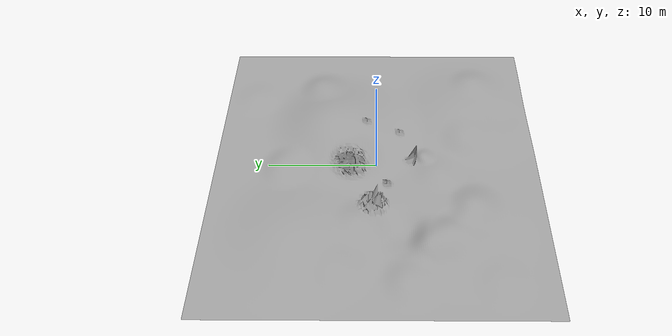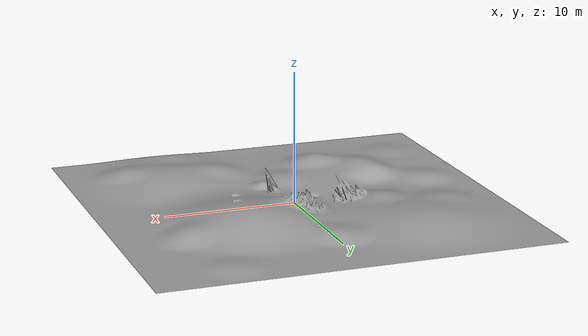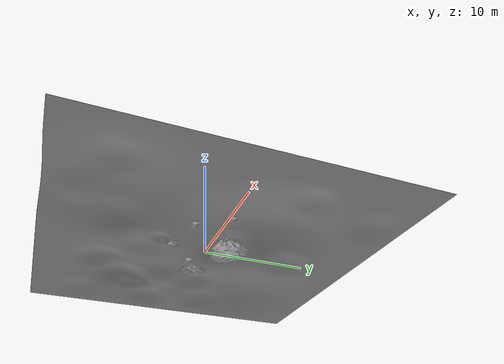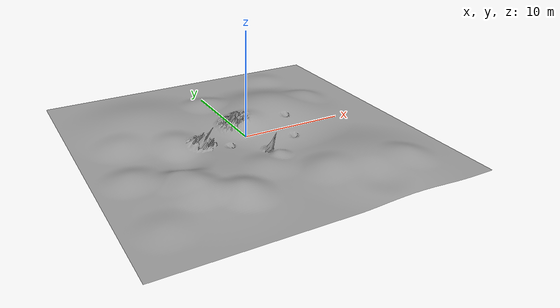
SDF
<?xml version="1.0" ?>
<sdf version="1.4">
    <model name="sparce_obstacles">
        <pose>0 0 0 0 0 0</pose>
        <static>true</static>
        <link name="terrain">
			<kinematic>true</kinematic>
            <collision name="terrain">
				<pose>0 0 0 0 0 0</pose>
                <geometry>
                    <mesh>
                        <uri>model://sparce_obstacles/meshes/sparce.dae</uri>
                    </mesh>
                </geometry>
                <surface>
					<contact>
						<ode>
							<min_depth>0.05</min_depth>
						</ode>
					</contact>
                </surface>
            </collision>
            <visual name="terrain">
				<pose>0 0 0 0 0 0</pose>
                <geometry>
                    <mesh>
                        <uri>model://sparce_obstacles/meshes/sparce.dae</uri>
                    </mesh>
                </geometry>
                <material>
                    <script>
                        <uri>file://media/materials/scripts/gazebo.material</uri>
                        <name>Gazebo/Grey</name>
                    </script>
                </material>
            </visual>
		</link>
	</model>
</sdf>
